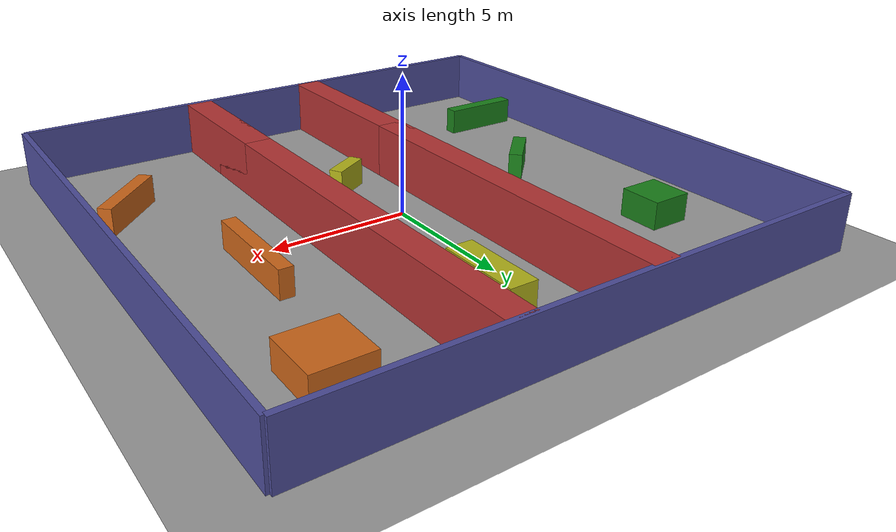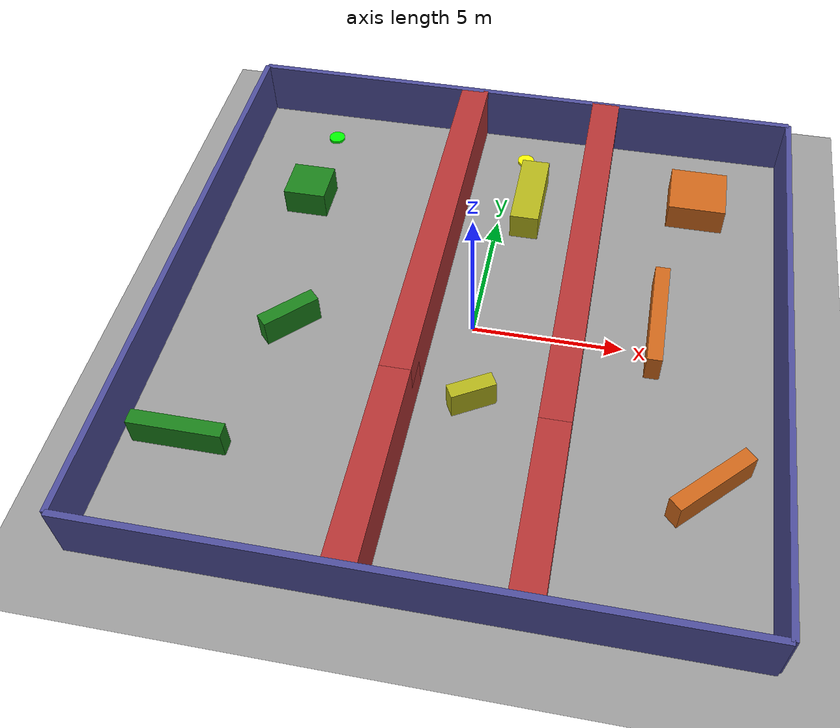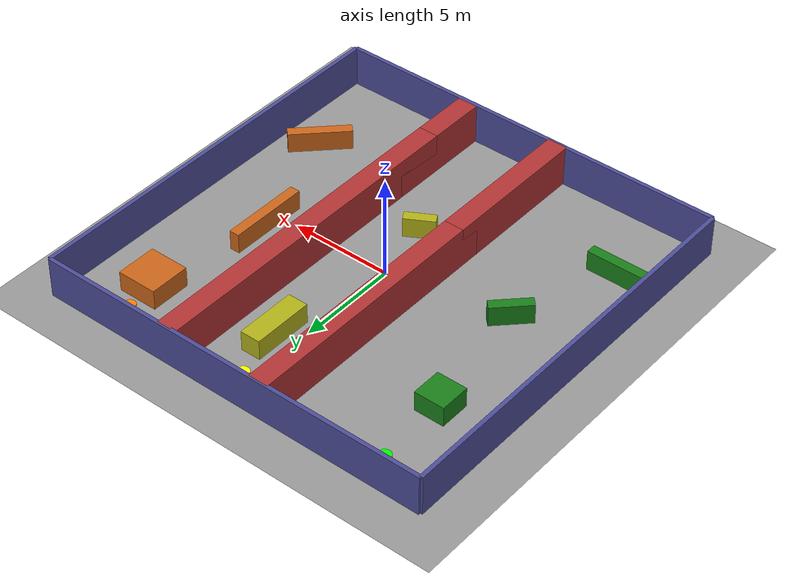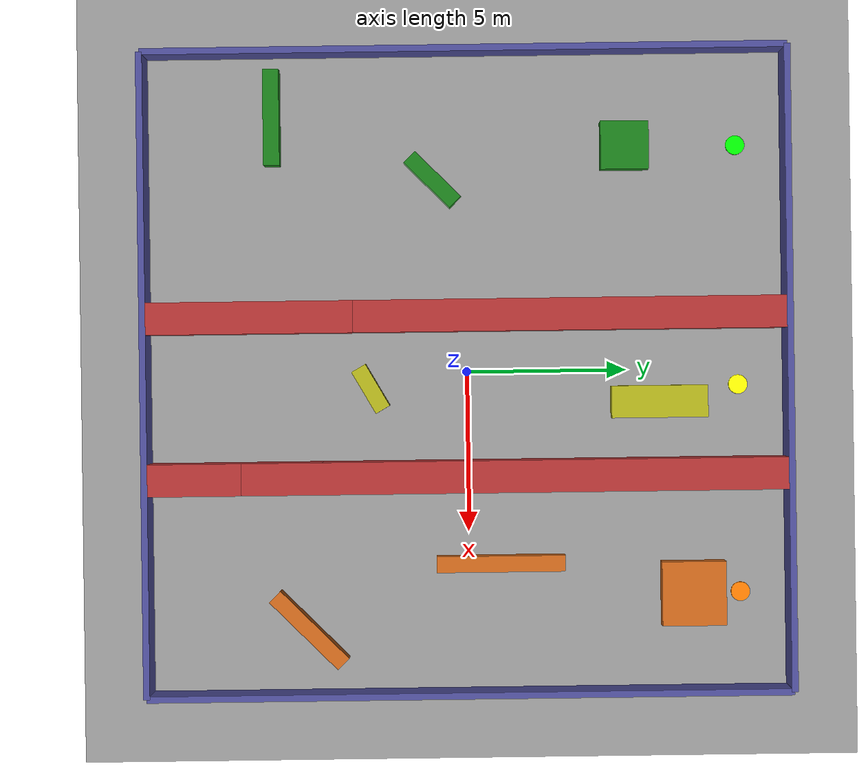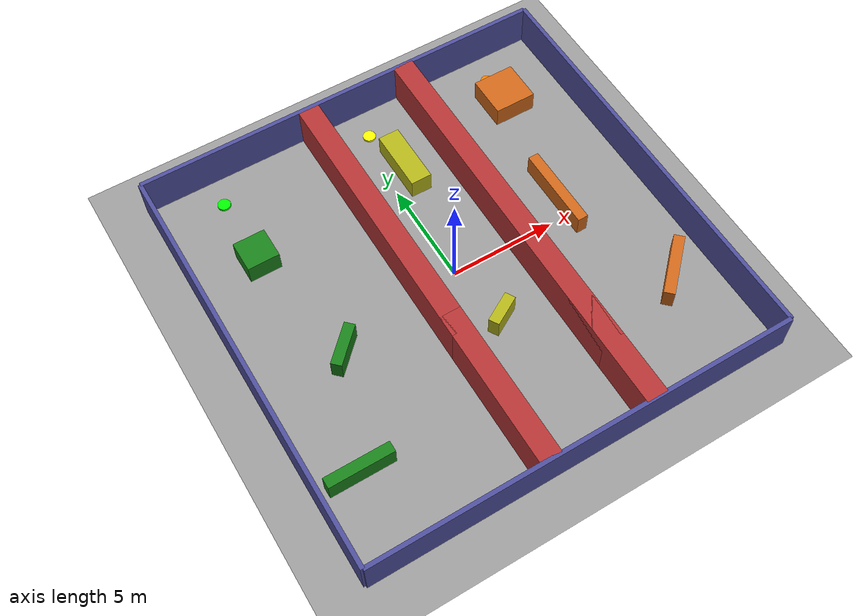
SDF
<?xml version="1.0" ?>
<sdf version="1.6">
  <world name="maze_signal_zones">

    <!-- CONFIGURACIÓN GLOBAL                                          -->
    <physics name="default_physics" type="ode">
      <max_step_size>0.001</max_step_size>
      <real_time_factor>1</real_time_factor>
      <real_time_update_rate>1000</real_time_update_rate>
    </physics>

    <gravity>0 0 -9.8</gravity>

    <!-- Luz solar -->
    <light name="sun" type="directional">
      <cast_shadows>true</cast_shadows>
      <pose>0 0 10 0 0 0</pose>
      <diffuse>0.8 0.8 0.8 1</diffuse>
      <specular>0.2 0.2 0.2 1</specular>
      <direction>-0.5 0.1 -0.9</direction>
    </light>

    <!-- Luz ambiental -->
    <light name="ambient_light" type="point">
      <pose>0 0 5 0 0 0</pose>
      <diffuse>0.4 0.4 0.4 1</diffuse>
      <specular>0.1 0.1 0.1 1</specular>
      <attenuation>
        <range>20</range>
        <constant>0.5</constant>
        <linear>0.01</linear>
        <quadratic>0.001</quadratic>
      </attenuation>
    </light>

    <!-- Plano del suelo -->
    <model name="ground_plane">
      <static>true</static>
      <link name="link">
        <collision name="collision">
          <geometry><plane><normal>0 0 1</normal><size>30 30</size></plane></geometry>
        </collision>
        <visual name="visual">
          <geometry><plane><normal>0 0 1</normal><size>30 30</size></plane></geometry>
          <material>
            <ambient>0.6 0.6 0.6 1</ambient>
            <diffuse>0.6 0.6 0.6 1</diffuse>
          </material>
        </visual>
      </link>
    </model>

    <!-- MURO PERIMETRAL EXTERIOR (20m x 20m)                         -->

    <!-- Muro Norte -->
    <model name="wall_north">
      <static>true</static>
      <pose>0 10 1 0 0 0</pose>
      <link name="link">
        <collision name="collision"><geometry><box><size>20 0.2 2</size></box></geometry></collision>
        <visual name="visual">
          <geometry><box><size>20 0.2 2</size></box></geometry>
          <material><ambient>0.3 0.3 0.6 1</ambient><diffuse>0.3 0.3 0.6 1</diffuse></material>
        </visual>
      </link>
    </model>

    <!-- Muro Sur -->
    <model name="wall_south">
      <static>true</static>
      <pose>0 -10 1 0 0 0</pose>
      <link name="link">
        <collision name="collision"><geometry><box><size>20 0.2 2</size></box></geometry></collision>
        <visual name="visual">
          <geometry><box><size>20 0.2 2</size></box></geometry>
          <material><ambient>0.3 0.3 0.6 1</ambient><diffuse>0.3 0.3 0.6 1</diffuse></material>
        </visual>
      </link>
    </model>

    <!-- Muro Este -->
    <model name="wall_east">
      <static>true</static>
      <pose>10 0 1 0 0 0</pose>
      <link name="link">
        <collision name="collision"><geometry><box><size>0.2 20 2</size></box></geometry></collision>
        <visual name="visual">
          <geometry><box><size>0.2 20 2</size></box></geometry>
          <material><ambient>0.3 0.3 0.6 1</ambient><diffuse>0.3 0.3 0.6 1</diffuse></material>
        </visual>
      </link>
    </model>

    <!-- Muro Oeste -->
    <model name="wall_west">
      <static>true</static>
      <pose>-10 0 1 0 0 0</pose>
      <link name="link">
        <collision name="collision"><geometry><box><size>0.2 20 2</size></box></geometry></collision>
        <visual name="visual">
          <geometry><box><size>0.2 20 2</size></box></geometry>
          <material><ambient>0.3 0.3 0.6 1</ambient><diffuse>0.3 0.3 0.6 1</diffuse></material>
        </visual>
      </link>
    </model>

    <!-- MURO DIVISORIO ZONA A | ZONA B (grosor 1.0m = señal bloqueada)-->
    <!-- Apertura en y=3 para cruce (pasillo angosto de 1.5m)         -->

    <!-- Segmento norte del divisor A|B -->
    <model name="divider_ab_north">
      <static>true</static>
      <pose>-1.75 3.25 1 0 0 0</pose>
      <link name="link">
        <collision name="collision"><geometry><box><size>1.0 13.5 2</size></box></geometry></collision>
        <visual name="visual">
          <geometry><box><size>1.0 13.5 2</size></box></geometry>
          <material><ambient>0.7 0.2 0.2 1</ambient><diffuse>0.7 0.2 0.2 1</diffuse></material>
        </visual>
      </link>
    </model>

    <!-- Segmento sur del divisor A|B -->
    <model name="divider_ab_south">
      <static>true</static>
      <pose>-1.75 -6.25 1 0 0 0</pose>
      <link name="link">
        <collision name="collision"><geometry><box><size>1.0 7.5 2</size></box></geometry></collision>
        <visual name="visual">
          <geometry><box><size>1.0 7.5 2</size></box></geometry>
          <material><ambient>0.7 0.2 0.2 1</ambient><diffuse>0.7 0.2 0.2 1</diffuse></material>
        </visual>
      </link>
    </model>

    <!-- MURO DIVISORIO ZONA B | ZONA C (grosor 1.0m)                 -->
    <!-- Apertura en y=-2 para cruce                                   -->

    <!-- Segmento norte del divisor B|C -->
    <model name="divider_bc_north">
      <static>true</static>
      <pose>3.25 1.5 1 0 0 0</pose>
      <link name="link">
        <collision name="collision"><geometry><box><size>1.0 17 2</size></box></geometry></collision>
        <visual name="visual">
          <geometry><box><size>1.0 17 2</size></box></geometry>
          <material><ambient>0.7 0.2 0.2 1</ambient><diffuse>0.7 0.2 0.2 1</diffuse></material>
        </visual>
      </link>
    </model>

    <!-- Segmento sur del divisor B|C -->
    <model name="divider_bc_south">
      <static>true</static>
      <pose>3.25 -7.25 1 0 0 0</pose>
      <link name="link">
        <collision name="collision"><geometry><box><size>1.0 5.5 2</size></box></geometry></collision>
        <visual name="visual">
          <geometry><box><size>1.0 5.5 2</size></box></geometry>
          <material><ambient>0.7 0.2 0.2 1</ambient><diffuse>0.7 0.2 0.2 1</diffuse></material>
        </visual>
      </link>
    </model>

    <!-- OBSTÁCULOS INTERNOS ZONA A (oeste, color verde oscuro)        -->
    <model name="obs_a1">
      <static>true</static>
      <pose>-7 5 0.5 0 0 0</pose>
      <link name="link">
        <collision name="collision"><geometry><box><size>1.5 1.5 1</size></box></geometry></collision>
        <visual name="visual">
          <geometry><box><size>1.5 1.5 1</size></box></geometry>
          <material><ambient>0.1 0.5 0.1 1</ambient><diffuse>0.1 0.5 0.1 1</diffuse></material>
        </visual>
      </link>
    </model>

    <model name="obs_a2">
      <static>true</static>
      <pose>-6 -1 0.5 0 0 0.785</pose>
      <link name="link">
        <collision name="collision"><geometry><box><size>2 0.5 1</size></box></geometry></collision>
        <visual name="visual">
          <geometry><box><size>2 0.5 1</size></box></geometry>
          <material><ambient>0.1 0.5 0.1 1</ambient><diffuse>0.1 0.5 0.1 1</diffuse></material>
        </visual>
      </link>
    </model>

    <model name="obs_a3">
      <static>true</static>
      <pose>-8 -6 0.5 0 0 0</pose>
      <link name="link">
        <collision name="collision"><geometry><box><size>3 0.5 1</size></box></geometry></collision>
        <visual name="visual">
          <geometry><box><size>3 0.5 1</size></box></geometry>
          <material><ambient>0.1 0.5 0.1 1</ambient><diffuse>0.1 0.5 0.1 1</diffuse></material>
        </visual>
      </link>
    </model>

    <!-- OBSTÁCULOS INTERNOS ZONA B (central, color amarillo)          -->
    <model name="obs_b1">
      <static>true</static>
      <pose>1 6 0.5 0 0 0</pose>
      <link name="link">
        <collision name="collision"><geometry><box><size>1 3 1</size></box></geometry></collision>
        <visual name="visual">
          <geometry><box><size>1 3 1</size></box></geometry>
          <material><ambient>0.7 0.7 0.1 1</ambient><diffuse>0.7 0.7 0.1 1</diffuse></material>
        </visual>
      </link>
    </model>

    <model name="obs_b2">
      <static>true</static>
      <pose>0.5 -3 0.5 0 0 0.523</pose>
      <link name="link">
        <collision name="collision"><geometry><box><size>1.5 0.5 1</size></box></geometry></collision>
        <visual name="visual">
          <geometry><box><size>1.5 0.5 1</size></box></geometry>
          <material><ambient>0.7 0.7 0.1 1</ambient><diffuse>0.7 0.7 0.1 1</diffuse></material>
        </visual>
      </link>
    </model>

    <!-- OBSTÁCULOS INTERNOS ZONA C (este, color naranja)              -->
    <model name="obs_c1">
      <static>true</static>
      <pose>7 7 0.5 0 0 0</pose>
      <link name="link">
        <collision name="collision"><geometry><box><size>2 2 1</size></box></geometry></collision>
        <visual name="visual">
          <geometry><box><size>2 2 1</size></box></geometry>
          <material><ambient>0.8 0.4 0.1 1</ambient><diffuse>0.8 0.4 0.1 1</diffuse></material>
        </visual>
      </link>
    </model>

    <model name="obs_c2">
      <static>true</static>
      <pose>6 1 0.5 0 0 0</pose>
      <link name="link">
        <collision name="collision"><geometry><box><size>0.5 4 1</size></box></geometry></collision>
        <visual name="visual">
          <geometry><box><size>0.5 4 1</size></box></geometry>
          <material><ambient>0.8 0.4 0.1 1</ambient><diffuse>0.8 0.4 0.1 1</diffuse></material>
        </visual>
      </link>
    </model>

    <model name="obs_c3">
      <static>true</static>
      <pose>8 -5 0.5 0 0 0.785</pose>
      <link name="link">
        <collision name="collision"><geometry><box><size>3 0.5 1</size></box></geometry></collision>
        <visual name="visual">
          <geometry><box><size>3 0.5 1</size></box></geometry>
          <material><ambient>0.8 0.4 0.1 1</ambient><diffuse>0.8 0.4 0.1 1</diffuse></material>
        </visual>
      </link>
    </model>

    <!-- MARCADORES DE ZONA (cilindros de referencia visual)           -->
    <model name="marker_zone_a">
      <static>true</static>
      <pose>-7 8.5 0.05 0 0 0</pose>
      <link name="link">
        <collision name="collision"><geometry><cylinder><radius>0.3</radius><length>0.1</length></cylinder></geometry></collision>
        <visual name="visual">
          <geometry><cylinder><radius>0.3</radius><length>0.1</length></cylinder></geometry>
          <material><ambient>0 1 0 1</ambient><diffuse>0 1 0 1</diffuse></material>
        </visual>
      </link>
    </model>

    <model name="marker_zone_b">
      <static>true</static>
      <pose>0.5 8.5 0.05 0 0 0</pose>
      <link name="link">
        <collision name="collision"><geometry><cylinder><radius>0.3</radius><length>0.1</length></cylinder></geometry></collision>
        <visual name="visual">
          <geometry><cylinder><radius>0.3</radius><length>0.1</length></cylinder></geometry>
          <material><ambient>1 1 0 1</ambient><diffuse>1 1 0 1</diffuse></material>
        </visual>
      </link>
    </model>

    <model name="marker_zone_c">
      <static>true</static>
      <pose>7 8.5 0.05 0 0 0</pose>
      <link name="link">
        <collision name="collision"><geometry><cylinder><radius>0.3</radius><length>0.1</length></cylinder></geometry></collision>
        <visual name="visual">
          <geometry><cylinder><radius>0.3</radius><length>0.1</length></cylinder></geometry>
          <material><ambient>1 0.5 0 1</ambient><diffuse>1 0.5 0 1</diffuse></material>
        </visual>
      </link>
    </model>

    <!-- Posiciones de spawn sugeridas para agentes:            -->
    <!-- Agente 1: pose="-8 -8 0.1 0 0 0"  (Zona A)           -->
    <!-- Agente 2: pose="-8 8 0.1 0 0 0"   (Zona A)           -->
    <!-- Objetivo: pose="8 -8 0.1 0 0 0"   (Zona C)           -->

  </world>
</sdf>
